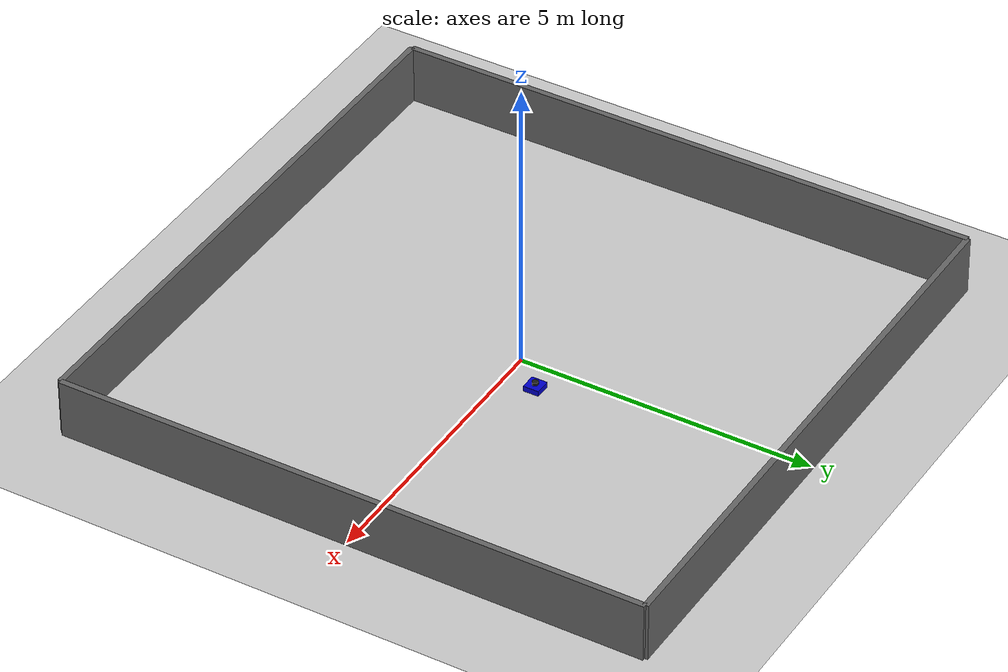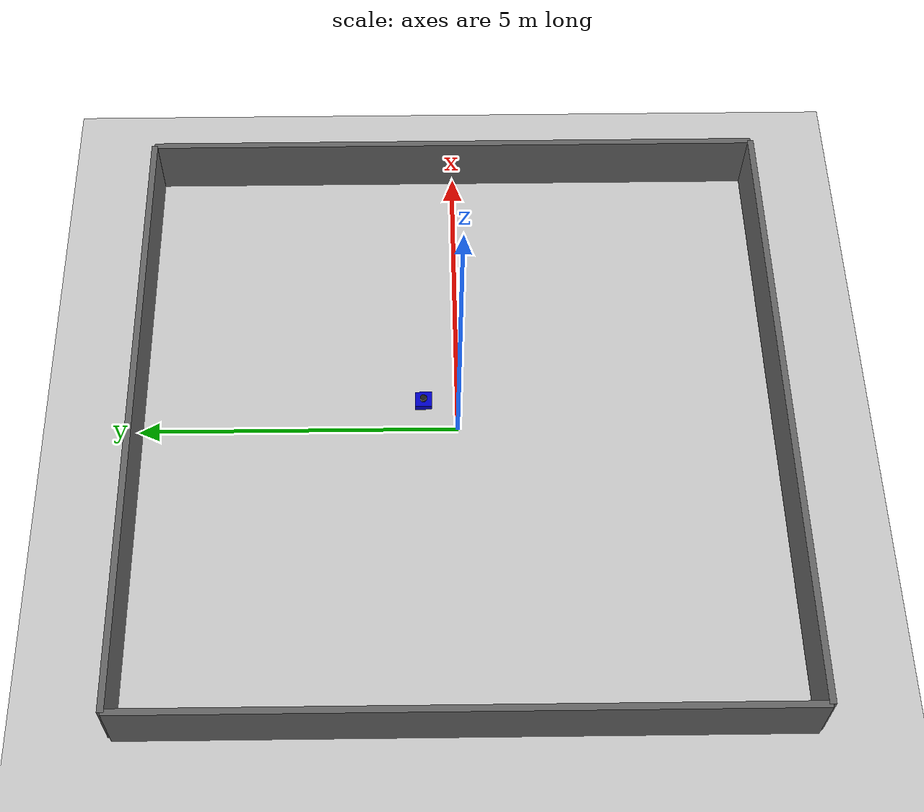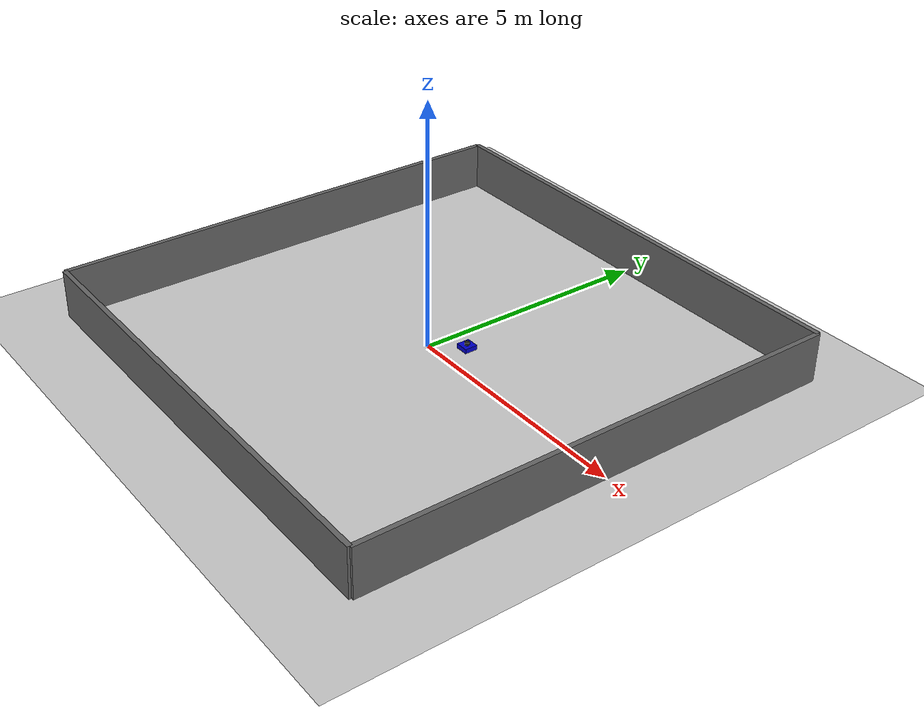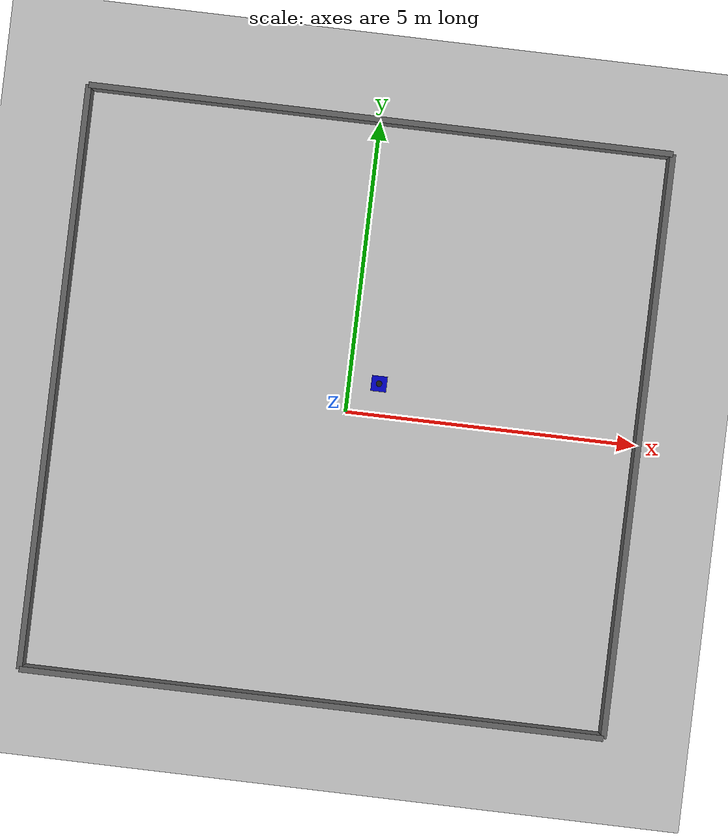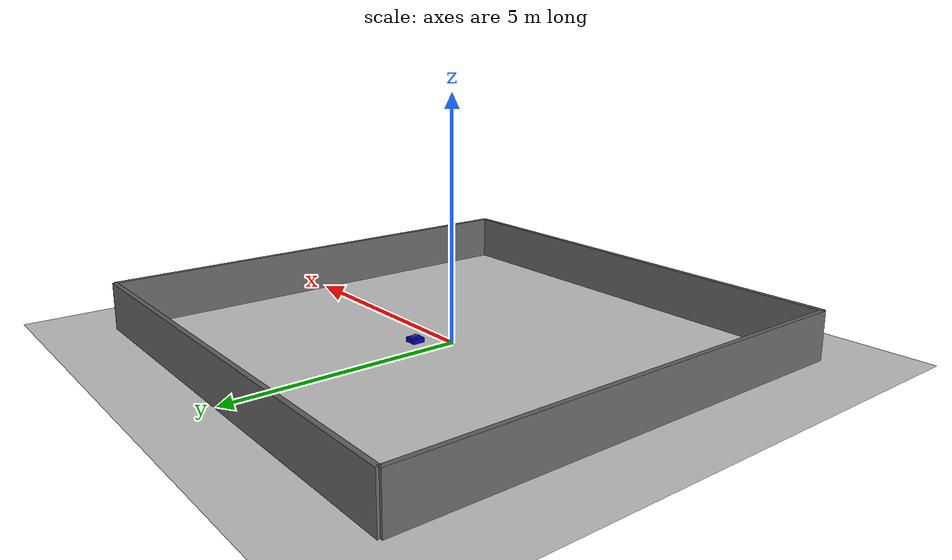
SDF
<?xml version="1.0"?>
<sdf version="1.6">
  <world name="tb3_gz_sim">
    <physics name="1ms" type="ode">
      <max_step_size>0.001</max_step_size>
      <real_time_factor>1.0</real_time_factor>
      <real_time_update_rate>1000</real_time_update_rate>
    </physics>

    <plugin filename="gz-sim-physics-system" name="gz::sim::systems::Physics"/>
    <plugin filename="gz-sim-user-commands-system" name="gz::sim::systems::UserCommands"/>
    <plugin filename="gz-sim-scene-broadcaster-system" name="gz::sim::systems::SceneBroadcaster"/>
    <plugin filename="gz-sim-sensors-system" name="gz::sim::systems::Sensors">
      <render_engine>ogre2</render_engine>
    </plugin>

    <light name="sun" type="directional">
      <cast_shadows>true</cast_shadows>
      <pose>0 0 10 0 0 0</pose>
      <diffuse>0.8 0.8 0.8 1</diffuse>
      <specular>0.2 0.2 0.2 1</specular>
      <attenuation>
        <range>1000</range>
        <constant>0.9</constant>
        <linear>0.01</linear>
        <quadratic>0.001</quadratic>
      </attenuation>
      <direction>-0.5 0.1 -0.9</direction>
    </light>

    <model name="ground_plane">
      <static>true</static>
      <link name="link">
        <collision name="collision">
          <geometry>
            <plane>
              <normal>0 0 1</normal>
              <size>20 20</size>
            </plane>
          </geometry>
        </collision>
        <visual name="visual">
          <geometry>
            <plane>
              <normal>0 0 1</normal>
              <size>20 20</size>
            </plane>
          </geometry>
          <material>
            <ambient>0.8 0.8 0.8 1</ambient>
            <diffuse>0.8 0.8 0.8 1</diffuse>
            <specular>0.8 0.8 0.8 1</specular>
          </material>
        </visual>
      </link>
    </model>

    <model name="room_north">
      <static>true</static>
      <pose>0 5 0.5 0 0 0</pose>
      <link name="wall">
        <collision name="collision">
          <geometry>
            <box>
              <size>10 0.1 1</size>
            </box>
          </geometry>
        </collision>
        <visual name="visual">
          <geometry>
            <box>
              <size>10 0.1 1</size>
            </box>
          </geometry>
          <material>
            <ambient>0.4 0.4 0.4 1</ambient>
            <diffuse>0.4 0.4 0.4 1</diffuse>
            <specular>0.2 0.2 0.2 1</specular>
          </material>
        </visual>
      </link>
    </model>

    <model name="room_south">
      <static>true</static>
      <pose>0 -5 0.5 0 0 0</pose>
      <link name="wall">
        <collision name="collision">
          <geometry>
            <box>
              <size>10 0.1 1</size>
            </box>
          </geometry>
        </collision>
        <visual name="visual">
          <geometry>
            <box>
              <size>10 0.1 1</size>
            </box>
          </geometry>
          <material>
            <ambient>0.4 0.4 0.4 1</ambient>
            <diffuse>0.4 0.4 0.4 1</diffuse>
            <specular>0.2 0.2 0.2 1</specular>
          </material>
        </visual>
      </link>
    </model>

    <model name="room_west">
      <static>true</static>
      <pose>-5 0 0.5 0 0 0</pose>
      <link name="wall">
        <collision name="collision">
          <geometry>
            <box>
              <size>0.1 10 1</size>
            </box>
          </geometry>
        </collision>
        <visual name="visual">
          <geometry>
            <box>
              <size>0.1 10 1</size>
            </box>
          </geometry>
          <material>
            <ambient>0.4 0.4 0.4 1</ambient>
            <diffuse>0.4 0.4 0.4 1</diffuse>
            <specular>0.2 0.2 0.2 1</specular>
          </material>
        </visual>
      </link>
    </model>

    <model name="room_east">
      <static>true</static>
      <pose>5 0 0.5 0 0 0</pose>
      <link name="wall">
        <collision name="collision">
          <geometry>
            <box>
              <size>0.1 10 1</size>
            </box>
          </geometry>
        </collision>
        <visual name="visual">
          <geometry>
            <box>
              <size>0.1 10 1</size>
            </box>
          </geometry>
          <material>
            <ambient>0.4 0.4 0.4 1</ambient>
            <diffuse>0.4 0.4 0.4 1</diffuse>
            <specular>0.2 0.2 0.2 1</specular>
          </material>
        </visual>
      </link>
    </model>

    <model name="turtlebot3_waffle">
      <pose>0.569 0.541 0.01 0 0 0</pose>

      <link name="base_footprint"/>

      <joint name="base_joint" type="fixed">
        <parent>base_footprint</parent>
        <child>base_link</child>
        <pose>0 0 0.01 0 0 0</pose>
      </joint>

      <link name="base_link">
        <inertial>
          <mass>1.0</mass>
          <inertia>
            <ixx>0.01</ixx>
            <ixy>0</ixy>
            <ixz>0</ixz>
            <iyy>0.01</iyy>
            <iyz>0</iyz>
            <izz>0.01</izz>
          </inertia>
        </inertial>
        <collision name="base_collision">
          <pose>-0.064 0 0.048 0 0 0</pose>
          <geometry>
            <box>
              <size>0.266 0.266 0.094</size>
            </box>
          </geometry>
        </collision>
        <visual name="base_visual">
          <pose>-0.064 0 0.048 0 0 0</pose>
          <geometry>
            <box>
              <size>0.266 0.266 0.094</size>
            </box>
          </geometry>
          <material>
            <ambient>0.0 0.0 0.8 1</ambient>
            <diffuse>0.0 0.0 0.8 1</diffuse>
            <specular>0.0 0.0 0.2 1</specular>
          </material>
        </visual>
      </link>

      <joint name="wheel_left_joint" type="continuous">
        <parent>base_link</parent>
        <child>wheel_left_link</child>
        <pose>0.0 0.144 0.023 -1.57 0 0</pose>
        <axis>
          <xyz>0 0 1</xyz>
        </axis>
      </joint>

      <link name="wheel_left_link">
        <inertial>
          <mass>0.03</mass>
          <inertia>
            <ixx>0.0001</ixx>
            <ixy>0</ixy>
            <ixz>0</ixz>
            <iyy>0.0001</iyy>
            <iyz>0</iyz>
            <izz>0.0001</izz>
          </inertia>
        </inertial>
        <collision name="collision">
          <geometry>
            <cylinder>
              <radius>0.033</radius>
              <length>0.018</length>
            </cylinder>
          </geometry>
        </collision>
        <visual name="visual">
          <geometry>
            <cylinder>
              <radius>0.033</radius>
              <length>0.018</length>
            </cylinder>
          </geometry>
          <material>
            <ambient>0.2 0.2 0.2 1</ambient>
            <diffuse>0.2 0.2 0.2 1</diffuse>
            <specular>0.2 0.2 0.2 1</specular>
          </material>
        </visual>
      </link>

      <joint name="wheel_right_joint" type="continuous">
        <parent>base_link</parent>
        <child>wheel_right_link</child>
        <pose>0.0 -0.144 0.023 -1.57 0 0</pose>
        <axis>
          <xyz>0 0 1</xyz>
        </axis>
      </joint>

      <link name="wheel_right_link">
        <inertial>
          <mass>0.03</mass>
          <inertia>
            <ixx>0.0001</ixx>
            <ixy>0</ixy>
            <ixz>0</ixz>
            <iyy>0.0001</iyy>
            <iyz>0</iyz>
            <izz>0.0001</izz>
          </inertia>
        </inertial>
        <collision name="collision">
          <geometry>
            <cylinder>
              <radius>0.033</radius>
              <length>0.018</length>
            </cylinder>
          </geometry>
        </collision>
        <visual name="visual">
          <geometry>
            <cylinder>
              <radius>0.033</radius>
              <length>0.018</length>
            </cylinder>
          </geometry>
          <material>
            <ambient>0.2 0.2 0.2 1</ambient>
            <diffuse>0.2 0.2 0.2 1</diffuse>
            <specular>0.2 0.2 0.2 1</specular>
          </material>
        </visual>
      </link>

      <joint name="caster_back_right_joint" type="fixed">
        <parent>base_link</parent>
        <child>caster_back_right_link</child>
        <pose>-0.177 -0.064 -0.004 -1.57 0 0</pose>
      </joint>
      <link name="caster_back_right_link">
        <inertial>
          <mass>0.01</mass>
          <inertia>
            <ixx>0.0001</ixx>
            <ixy>0</ixy>
            <ixz>0</ixz>
            <iyy>0.0001</iyy>
            <iyz>0</iyz>
            <izz>0.0001</izz>
          </inertia>
        </inertial>
        <collision name="collision">
          <geometry>
            <box>
              <size>0.03 0.009 0.02</size>
            </box>
          </geometry>
        </collision>
      </link>

      <joint name="caster_back_left_joint" type="fixed">
        <parent>base_link</parent>
        <child>caster_back_left_link</child>
        <pose>-0.177 0.064 -0.004 -1.57 0 0</pose>
      </joint>
      <link name="caster_back_left_link">
        <inertial>
          <mass>0.01</mass>
          <inertia>
            <ixx>0.0001</ixx>
            <ixy>0</ixy>
            <ixz>0</ixz>
            <iyy>0.0001</iyy>
            <iyz>0</iyz>
            <izz>0.0001</izz>
          </inertia>
        </inertial>
        <collision name="collision">
          <geometry>
            <box>
              <size>0.03 0.009 0.02</size>
            </box>
          </geometry>
        </collision>
      </link>

      <joint name="scan_joint" type="fixed">
        <parent>base_link</parent>
        <child>base_scan</child>
        <pose>-0.064 0 0.122 0 0 0</pose>
      </joint>

      <link name="base_scan">
        <inertial>
          <pose>-0.064 0 0.121 0 0 0</pose>
          <inertia>
            <ixx>0.001</ixx>
            <ixy>0.000</ixy>
            <ixz>0.000</ixz>
            <iyy>0.001</iyy>
            <iyz>0.000</iyz>
            <izz>0.001</izz>
          </inertia>
          <mass>0.125</mass>
        </inertial>
        <collision name="lidar_sensor_collision">
          <pose>-0.052 0 0.111 0 0 0</pose>
          <geometry>
            <cylinder>
              <radius>0.0508</radius>
              <length>0.055</length>
            </cylinder>
          </geometry>
        </collision>
        <visual name="lidar_sensor_visual">
          <pose>-0.064 0 0.121 0 0 0</pose>
          <geometry>
            <cylinder>
              <radius>0.0508</radius>
              <length>0.055</length>
            </cylinder>
          </geometry>
          <material>
            <ambient>0.1 0.1 0.1 1</ambient>
            <diffuse>0.1 0.1 0.1 1</diffuse>
            <specular>0.1 0.1 0.1 1</specular>
          </material>
        </visual>
        <sensor name="hls_lfcd_lds" type="gpu_lidar">
          <alwaysOn>1</alwaysOn>
          <visualize>true</visualize>
          <pose>-0.064 0 0.15 0 0 0</pose>
          <update_rate>5</update_rate>
          <topic>lidar</topic>
          <lidar>
            <scan>
              <horizontal>
                <samples>360</samples>
                <resolution>1</resolution>
                <min_angle>0</min_angle>
                <max_angle>6.2831853</max_angle>
              </horizontal>
              <vertical>
                <samples>1</samples>
                <resolution>1</resolution>
                <min_angle>0</min_angle>
                <max_angle>0</max_angle>
              </vertical>
            </scan>
            <range>
              <min>0.12</min>
              <max>3.5</max>
              <resolution>0.015</resolution>
            </range>
          </lidar>
        </sensor>
      </link>

      <plugin filename="gz-sim-diff-drive-system" name="gz::sim::systems::DiffDrive">
        <left_joint>wheel_left_joint</left_joint>
        <right_joint>wheel_right_joint</right_joint>
        <wheel_separation>0.288</wheel_separation>
        <wheel_radius>0.033</wheel_radius>
        <odom_publish_frequency>20</odom_publish_frequency>
      </plugin>
      <plugin filename="gz-sim-pose-publisher-system" name="gz::sim::systems::PosePublisher">
        <publish_link_pose>true</publish_link_pose>
        <use_pose_vector_msg>true</use_pose_vector_msg>
        <static_publisher>true</static_publisher>
        <static_update_frequency>1</static_update_frequency>
      </plugin>

      <plugin filename="gz-sim-odometry-publisher-system" name="gz::sim::systems::OdometryPublisher">
        <odom_frame>turtlebot3_waffle</odom_frame>
        <robot_base_frame>base_footprint</robot_base_frame>
      </plugin>
    </model>
  </world>
</sdf>
